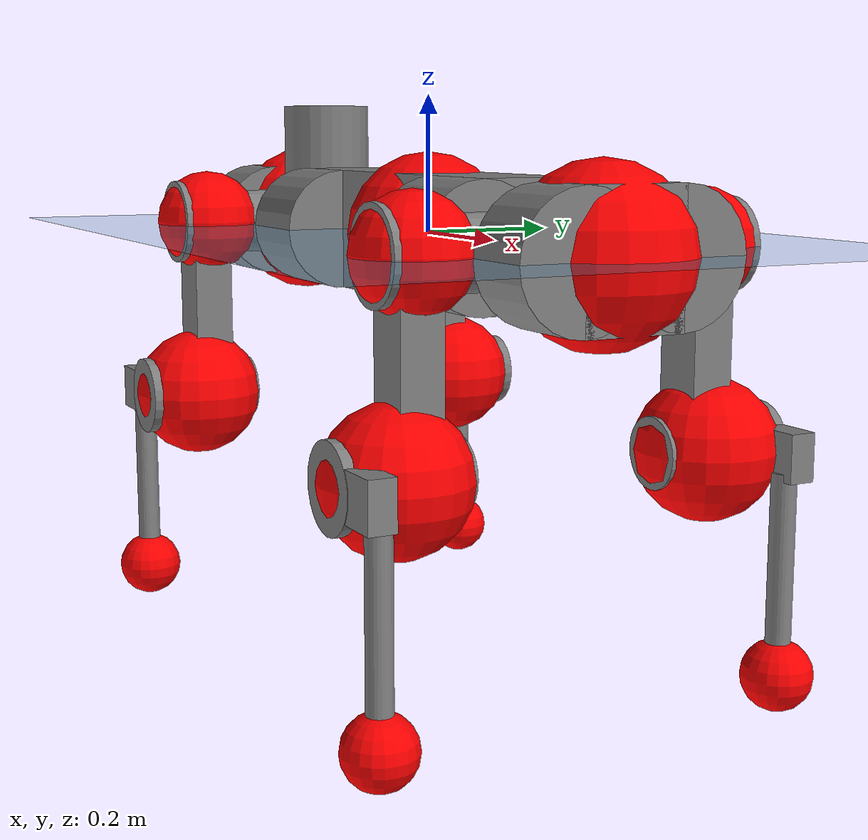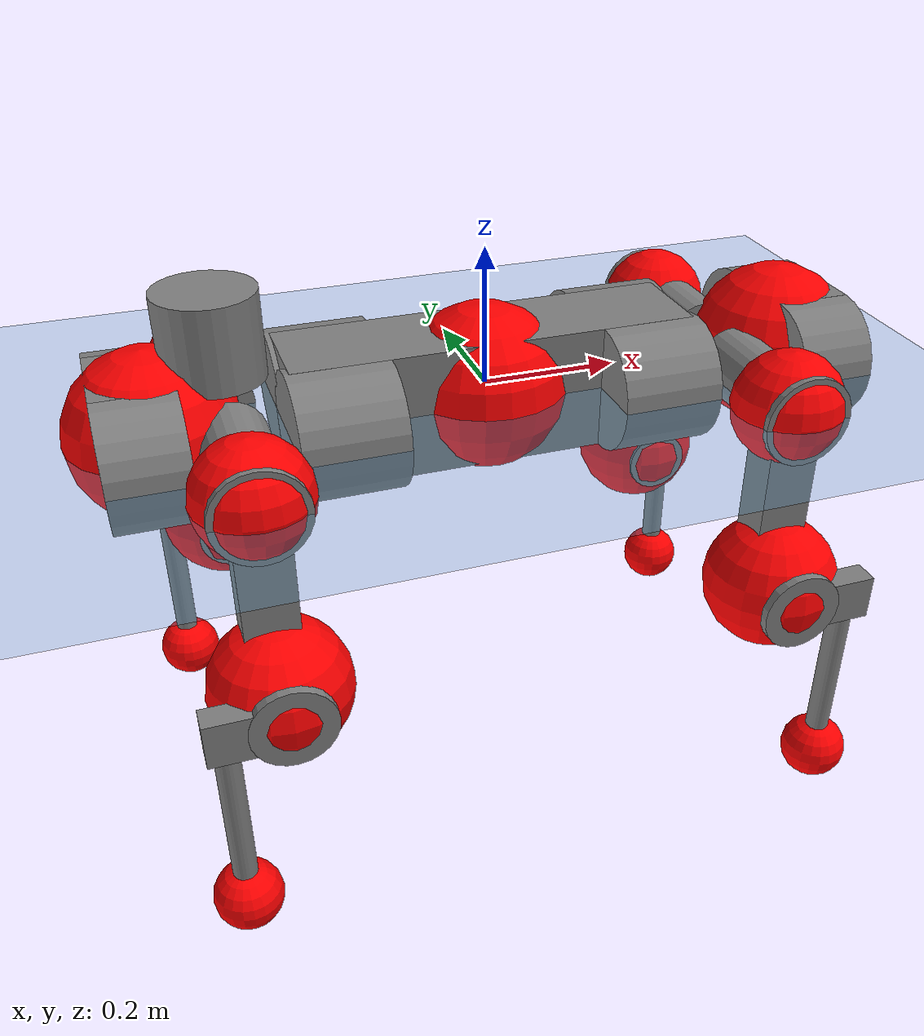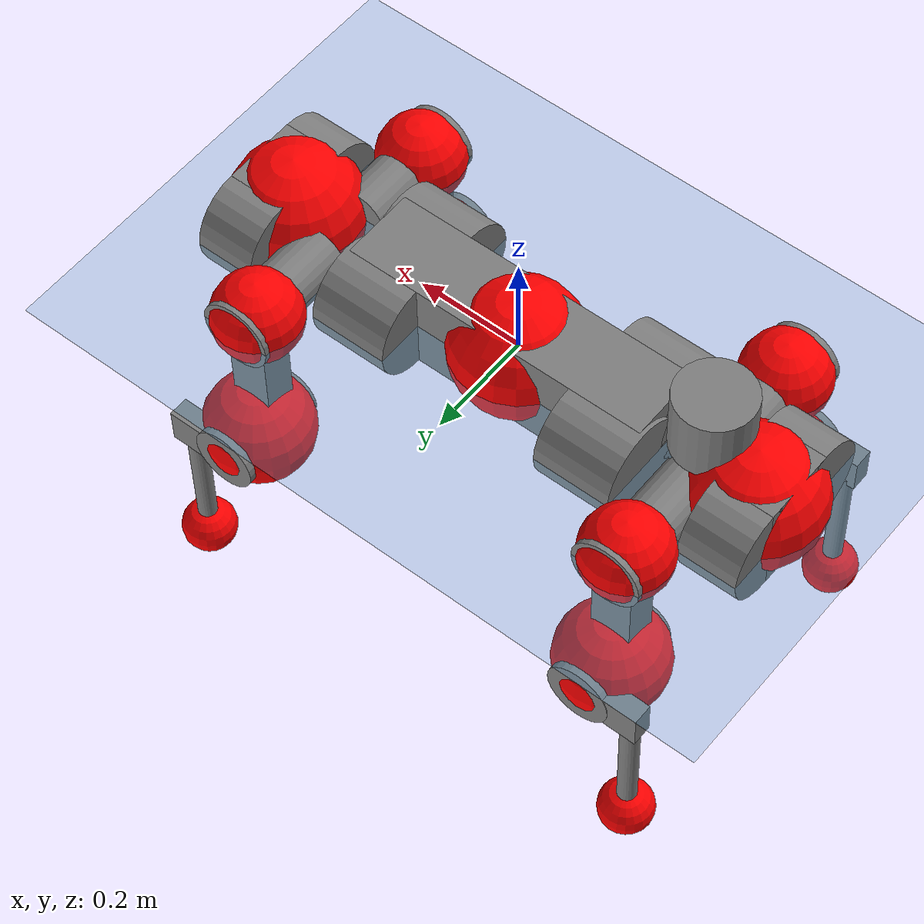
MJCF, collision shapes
<mujoco model="anymal_c">
  <compiler angle="radian" assetdir="assets" balanceinertia="true" inertiafromgeom="false"/>

  <option timestep="0.005" density="1.2" viscosity="2e-05"/>

  <size nkey="1"/>

  <visual>
    <quality shadowsize="8192"/>
    <map shadowclip="0.5"/>
  </visual>

  <default>
    <default class="/">
      <material specular="0" shininess="0.25"/>
      <geom contype="0" conaffinity="0" group="1" solref="-1000 -80"/>
      <site size="0.01 0.005 0.005" group="5"/>
      <general forcelimited="true" forcerange="-80 80" biastype="affine" gainprm="80" biasprm="0 -80 -2"/>
      <default class="anymal_c">
        <joint armature="0.01" damping="0.01" frictionloss="0.1"/>
        <default class="visual">
          <geom type="mesh" group="2"/>
          <default class="visual_zflip"/>
        </default>
        <default class="collision">
          <geom type="cylinder" group="3"/>
          <default class="foot">
            <geom size="0.03 0 0" type="sphere" condim="6" priority="1" friction="0.8 0.02 0.01" solimp="0.015 1 0.03"/>
          </default>
        </default>
      </default>
      <default class="reward_collision_sphere">
        <geom group="5" rgba="1 0 0 1"/>
      </default>
    </default>
  </default>

  <asset>
    <texture type="skybox" colorspace="auto" name="//unnamed_texture_0" builtin="gradient" rgb1="0.95 0.95 0.95" rgb2="0.95 0.95 0.95" width="100" height="600"/>
    <texture type="2d" colorspace="auto" name="texplane" builtin="checker" rgb1="0.345 0.575 0.748" rgb2="0.345 0.575 0.748" markrgb="1 1 1" width="512" height="512"/>
    <texture type="2d" colorspace="linear" name="base" file="base.png"/>
    <texture type="2d" colorspace="linear" name="top_shell" file="top_shell.png"/>
    <texture type="2d" colorspace="linear" name="bottom_shell" file="bottom_shell.png"/>
    <texture type="2d" colorspace="linear" name="remote" file="remote.png"/>
    <texture type="2d" colorspace="linear" name="hatch" file="hatch.png"/>
    <texture type="2d" colorspace="linear" name="handle" file="handle.png"/>
    <texture type="2d" colorspace="linear" name="face" file="face.png"/>
    <texture type="2d" colorspace="linear" name="battery" file="battery.png"/>
    <texture type="2d" colorspace="linear" name="lidar_cage" file="lidar_cage.png"/>
    <texture type="2d" colorspace="linear" name="depth_camera" file="depth_camera.png"/>
    <texture type="2d" colorspace="linear" name="wide_angle_camera" file="wide_angle_camera.png"/>
    <texture type="2d" colorspace="linear" name="lidar" file="lidar.png"/>
    <texture type="2d" colorspace="linear" name="drive" file="drive.png"/>
    <texture type="2d" colorspace="linear" name="hip_l" file="hip_l.png"/>
    <texture type="2d" colorspace="linear" name="shank_l" file="shank_l.png"/>
    <texture type="2d" colorspace="linear" name="foot" file="foot.png"/>
    <texture type="2d" colorspace="linear" name="thigh" file="thigh.png"/>
    <texture type="2d" colorspace="linear" name="shank_r" file="shank_r.png"/>
    <texture type="2d" colorspace="linear" name="hip_r" file="hip_r.png"/>
    <material name="MatPlane" class="/" texture="texplane" texuniform="true" texrepeat="2 2" specular="0.9" shininess="0.5"/>
    <material name="black_plastic" class="/" rgba="0.007 0.007 0.007 1"/>
    <material name="green" class="/" rgba="0.052 0.178 0.033 1"/>
    <material name="red" class="/" rgba="0.178 0.006 0.005 1"/>
    <material name="yellow" class="/" rgba="0.178 0.119 0.006 1"/>
    <material name="lwl" class="/" rgba="0.8 0.8 0.8 1"/>
    <material name="base" class="/" texture="base"/>
    <material name="top_shell" class="/" texture="top_shell"/>
    <material name="bottom_shell" class="/" texture="bottom_shell"/>
    <material name="hip_l" class="/" texture="hip_l"/>
    <material name="thigh" class="/" texture="thigh"/>
    <material name="shank_l" class="/" texture="shank_l"/>
    <material name="foot" class="/" texture="foot"/>
    <material name="hip_r" class="/" texture="hip_r"/>
    <material name="shank" class="/" texture="shank_r"/>
    <material name="hatch" class="/" texture="hatch"/>
    <material name="remote" class="/" texture="remote"/>
    <material name="handle" class="/" texture="handle"/>
    <material name="face" class="/" texture="face"/>
    <material name="depth_camera" class="/" texture="depth_camera"/>
    <material name="wide_angle_camera" class="/" texture="wide_angle_camera"/>
    <material name="battery" class="/" texture="battery"/>
    <material name="lidar_cage" class="/" texture="lidar_cage"/>
    <material name="lidar" class="/" texture="lidar"/>
    <material name="drive" class="/" texture="drive"/>
    <mesh name="base_0" class="/" file="base_0.obj"/>
    <mesh name="base_1" class="/" file="base_1.obj"/>
    <mesh name="base_2" class="/" file="base_2.obj"/>
    <mesh name="base_3" class="/" file="base_3.obj"/>
    <mesh name="base_4" class="/" file="base_4.obj"/>
    <mesh name="base_5" class="/" file="base_5.obj"/>
    <mesh name="top_shell" class="/" file="top_shell.obj"/>
    <mesh name="bottom_shell" class="/" file="bottom_shell.obj"/>
    <mesh name="remote" class="/" file="remote.obj"/>
    <mesh name="handle" class="/" file="handle.obj"/>
    <mesh name="face" class="/" file="face.obj"/>
    <mesh name="wide_angle_camera" class="/" file="wide_angle_camera.obj"/>
    <mesh name="depth_camera" class="/" file="depth_camera.obj"/>
    <mesh name="battery" class="/" file="battery.obj"/>
    <mesh name="lidar_cage" class="/" file="lidar_cage.obj"/>
    <mesh name="lidar" class="/" file="lidar.obj"/>
    <mesh name="drive" class="/" file="drive.obj"/>
    <mesh name="hip_l" class="/" file="hip_l.obj"/>
    <mesh name="thigh" class="/" file="thigh.obj"/>
    <mesh name="shank_l" class="/" file="shank_l.obj"/>
    <mesh name="foot" class="/" file="foot.obj"/>
    <mesh name="hip_r" class="/" file="hip_r.obj"/>
    <mesh name="hatch" class="/" file="hatch.obj"/>
    <mesh name="shank_r" class="/" file="shank_r.obj"/>
  </asset>

  <worldbody>
    <geom name="floor" class="/" size="100 100 0.125" type="plane" group="0" material="MatPlane"/>
    <light name="toplight_shadow" class="/" pos="0 0 5" dir="0.0990148 0.0990148 -0.990148" type="directional" ambient="0.04 0.04 0.04" diffuse="0.55 0.55 0.55" specular="0.12 0.12 0.12"/>
    <light name="toplight_fill" class="/" pos="0 0 5" dir="0.0990148 0.0990148 -0.990148" type="directional" castshadow="false" ambient="0.04 0.04 0.04" diffuse="0.3 0.3 0.3" specular="0.08 0.08 0.08"/>
    <body name="trunk" childclass="anymal_c" pos="-0.00103795 0.000202392 -0.00232591" quat="0.999999 1.36439e-05 9.3881e-05 0.0012944">
      <inertial pos="0.00221746 0.00267648 0.0461825" quat="0.495395 0.502967 0.492097 0.50936" mass="19.2217" diaginertia="0.805785 0.644098 0.196256"/>
      <joint name="//unnamed_joint_0" type="free" armature="0" damping="0" frictionloss="0"/>
      <geom name="//unnamed_geom_1" class="visual" material="green" mesh="base_0"/>
      <geom name="//unnamed_geom_2" class="visual" material="yellow" mesh="base_1"/>
      <geom name="//unnamed_geom_3" class="visual" material="red" mesh="base_2"/>
      <geom name="//unnamed_geom_4" class="visual" material="black_plastic" mesh="base_3"/>
      <geom name="//unnamed_geom_5" class="visual" material="lwl" mesh="base_4"/>
      <geom name="//unnamed_geom_6" class="visual" material="base" mesh="base_5"/>
      <geom name="trunk_1" class="collision" size="0.291258 0.0703036 0.0903904" type="box"/>
      <geom name="trunk_2" class="collision" size="0.0903904 0.0728145" pos="0.22601 0.0699407 0" quat="0.707107 0 0.707107 0"/>
      <geom name="trunk_3" class="collision" size="0.0903904 0.0728145" pos="-0.22601 0.0699407 0" quat="0.707107 0 0.707107 0"/>
      <geom name="trunk_4" class="collision" size="0.0903904 0.0728145" pos="0.22601 -0.0699407 0" quat="0.707107 0 0.707107 0"/>
      <geom name="trunk_5" class="collision" size="0.0903904 0.0728145" pos="-0.22601 -0.0699407 0" quat="0.707107 0 0.707107 0"/>
      <geom name="//unnamed_geom_12" class="visual" material="top_shell" mesh="top_shell"/>
      <geom name="//unnamed_geom_13" class="visual" material="bottom_shell" mesh="bottom_shell"/>
      <geom name="//unnamed_geom_14" class="visual" material="remote" mesh="remote"/>
      <geom name="//unnamed_geom_15" class="visual" material="handle" mesh="handle"/>
      <geom name="//unnamed_geom_16" class="visual" pos="0.430719 0 0" quat="1 0 0 0" material="face" mesh="face"/>
      <geom name="trunk_6" class="collision" size="0.0552386 0.0703036 0.0903904" pos="0.487871 0 0" type="box"/>
      <geom name="//unnamed_geom_18" class="collision" size="0.0903904 0.0552386" pos="0.487871 0.0699407 0" quat="0.707107 0 0.707107 0"/>
      <geom name="//unnamed_geom_19" class="collision" size="0.0903904 0.0552386" pos="0.487871 -0.0699407 0" quat="0.707107 0 0.707107 0"/>
      <geom name="//unnamed_geom_20" class="visual" pos="0.479711 0 -0.0279727" quat="0.965926 0 0.258819 0" material="depth_camera" mesh="depth_camera"/>
      <geom name="//unnamed_geom_21" class="visual" pos="0.533073 0 0.0145917" material="wide_angle_camera" mesh="wide_angle_camera"/>
      <geom name="//unnamed_geom_22" class="visual_zflip" pos="-0.430719 0 0" quat="0 0 0 1" material="face" mesh="face"/>
      <geom name="trunk_7" class="collision" size="0.0552386 0.0703036 0.0903904" pos="-0.487871 0 0" quat="0 0 0 1" type="box"/>
      <geom name="//unnamed_geom_24" class="collision" size="0.0903904 0.0552386" pos="-0.487871 -0.0699407 0" quat="0 -0.707107 0 0.707107"/>
      <geom name="//unnamed_geom_25" class="collision" size="0.0903904 0.0552386" pos="-0.487871 0.0699407 0" quat="0 -0.707107 0 0.707107"/>
      <geom name="//unnamed_geom_26" class="visual" pos="-0.479711 0 -0.0279727" quat="0 -0.258819 0 0.965926" material="depth_camera" mesh="depth_camera"/>
      <geom name="//unnamed_geom_27" class="visual_zflip" pos="-0.533073 0 0.0145917" quat="0 0 0 1" material="wide_angle_camera" mesh="wide_angle_camera"/>
      <geom name="//unnamed_geom_28" class="visual" material="battery" mesh="battery"/>
      <geom name="//unnamed_geom_29" class="visual" pos="0 0.075868 0.0288054" quat="0.683013 -0.183013 0.183013 0.683013" material="depth_camera" mesh="depth_camera"/>
      <geom name="//unnamed_geom_30" class="visual" pos="0 -0.075868 0.0288054" quat="0.683013 0.183013 0.183013 -0.683013" material="depth_camera" mesh="depth_camera"/>
      <geom name="//unnamed_geom_31" class="visual" pos="-0.378243 0 0.0716427" quat="1 0 0 0" material="lidar_cage" mesh="lidar_cage"/>
      <geom name="trunk_8" class="collision" size="0.0703036 0.0602603" pos="-0.378243 0 0.130127"/>
      <geom name="//unnamed_geom_33" class="visual" pos="-0.378243 -1.57053e-05 0.138607" quat="0.707107 0 0 -0.707107" material="lidar" mesh="lidar"/>
      <geom name="//unnamed_geom_34" class="visual" pos="0.311635 0.103903 4.21285e-10" quat="0.258819 0.965926 0 0" material="drive" mesh="drive"/>
      <geom name="//unnamed_geom_35" class="visual" pos="0.311635 -0.103903 -4.21285e-10" quat="0.258819 -0.965926 0 0" material="drive" mesh="drive"/>
      <geom name="//unnamed_geom_36" class="visual" pos="-0.311635 0.103903 -4.21285e-10" quat="0 0 0.965926 -0.258819" material="drive" mesh="drive"/>
      <geom name="//unnamed_geom_37" class="visual" pos="-0.311635 -0.103903 4.21285e-10" quat="0 0 -0.965926 -0.258819" material="drive" mesh="drive"/>
      <geom name="//unnamed_geom_38" class="visual" pos="0.120539 0 0.0711554" quat="1 0 0 0" material="hatch" mesh="hatch"/>
      <geom name="//unnamed_geom_39" class="reward_collision_sphere" size="0.120521"/>
      <geom name="//unnamed_geom_40" class="reward_collision_sphere" size="0.120521" pos="0.467608 0 0"/>
      <geom name="//unnamed_geom_41" class="reward_collision_sphere" size="0.120521" pos="-0.467608 0 0"/>
      <site name="imu" pos="0.253822 0.0192236 0.0311861" size="0.0100434"/>
      <camera name="track" pos="0 -1.99831 0" quat="0.707107 0.707107 0 0" mode="trackcom"/>
      <camera name="ego_camera" pos="0.467608 0 -0.0389892" quat="-0.5 -0.5 0.5 0.5"/>
      <body name="LF_HIP" pos="0.312518 0.105182 0.00246026" quat="0.258954 0.96589 7.08345e-05 0.000201202">
        <inertial pos="0.0562386 -0.014489 -0.0102327" quat="-0.119337 0.705743 -0.140963 0.68397" mass="2.74465" diaginertia="0.00714345 0.0047774 0.00282102"/>
        <joint name="LF_HAA" pos="0 0 0" axis="0.999928 -0.0114853 0.00356777" range="-0.730197 0.526704" armature="0.00997545" damping="0" frictionloss="0.109772"/>
        <geom name="//unnamed_geom_42" class="visual" pos="0 2.47823e-05 -4.07047e-06" quat="0.258819 -0.965926 0 0" material="hip_l" mesh="hip_l"/>
        <geom name="//unnamed_geom_43" class="visual" pos="0.0622438 -0.0748866 -0.0430552" quat="0.183013 -0.683013 0.683013 0.183013" material="drive" mesh="drive"/>
        <geom name="//unnamed_geom_44" class="collision" size="0.0502169 0.0703036" pos="0.0622438 -0.0119497 -0.00673052" quat="-0.353553 -0.612372 0.612372 -0.353553"/>
        <body name="LF_THIGH" pos="0.0598213 -0.0707371 -0.0384393" quat="0.183013 -0.682953 0.683083 0.18297">
          <inertial pos="0.032273 0.000687486 -0.239318" quat="0.9932 -0.00469624 -0.0807389 0.0837404" mass="2.97778" diaginertia="0.0349971 0.0287718 0.00342966"/>
          <joint name="LF_HFE" pos="0 0 0" axis="0.999997 0.00027984 0.00248058" range="-3.18692 3.14145" armature="0.00882541" damping="0.0210267" frictionloss="0.100275"/>
          <geom name="//unnamed_geom_45" class="visual" pos="0.000795356 1.25329e-06 0" quat="0.707107 0 0 -0.707107" material="thigh" mesh="thigh"/>
          <geom name="//unnamed_geom_46" class="collision" size="0.0652819 0.0401735" pos="0.0415651 0 0" quat="0.5 0.5 -0.5 -0.5"/>
          <geom name="//unnamed_geom_47" class="collision" size="0.0376627 0.0301301 0.141927" pos="0.0311739 0 -0.137743" quat="0.707107 0 0 -0.707107" type="box"/>
          <geom name="//unnamed_geom_48" class="visual" pos="0.104225 0 -0.277798" quat="1 0 0 0" material="drive" mesh="drive"/>
          <geom name="//unnamed_geom_49" class="collision" size="0.0502169 0.0703036" pos="0.0314856 0 -0.277798" quat="0.707107 0 0.707107 0"/>
          <geom name="//unnamed_geom_50" class="reward_collision_sphere" size="0.080347" pos="0.0259782 0 0"/>
          <body name="LF_SHANK" pos="0.10393 0.000435938 -0.279122" quat="1 -8.42045e-06 -1.71492e-05 -1.95508e-06">
            <inertial pos="0.00376708 -0.0636925 -0.0789666" quat="0.992911 -0.116052 -0.00116386 -0.0256676" mass="0.597953" diaginertia="0.0118783 0.00907961 0.000979196"/>
            <joint name="LF_KFE" pos="0 0 0" axis="0.999998 0.00173981 -0.000198765" range="-3.17987 3.18218" armature="0.0102499" damping="0.0129897" frictionloss="0.111444"/>
            <geom name="//unnamed_geom_51" class="visual" pos="0.000259348 0.00138286 0" quat="0.707107 0 0 -0.707107" material="shank_l" mesh="shank_l"/>
            <geom name="LF_kfe_act" class="collision" size="0.0602603 0.0200868" pos="0.0207826 0 0" quat="0.5 0.5 -0.5 -0.5"/>
            <geom name="//unnamed_geom_53" class="collision" size="0.0577484 0.0338964 0.0190824" pos="0.0207826 -0.0574503 0" quat="0.5 0.5 -0.5 -0.5" type="box"/>
            <geom name="//unnamed_geom_54" class="visual" pos="0.0135606 -0.0874299 -0.32943" quat="0.382683 0 0 -0.92388" material="foot" mesh="foot"/>
            <geom name="LF_calf" class="collision" size="0.0175759 0.141865" pos="0.0135606 -0.0878755 -0.164715" quat="0.707107 0 0 -0.707107"/>
            <geom name="LF_foot" class="foot" size="0.0296753" pos="0.0135606 -0.0878755 -0.307498" quat="0.707107 0 0 -0.707107"/>
            <geom name="//unnamed_geom_57" class="reward_collision_sphere" size="0.100434" pos="-0.0519564 0 0"/>
            <geom name="//unnamed_geom_58" class="reward_collision_sphere" size="0.0502169" pos="0.0135606 -0.0878755 -0.307498"/>
            <site name="LF_foot" class="foot" pos="0.0135606 -0.0878755 -0.307498" quat="0.707107 0 0 -0.707107" size="0.0100434"/>
          </body>
        </body>
      </body>
      <body name="RF_HIP" pos="0.310411 -0.103526 0.00214282" quat="0.258871 -0.965911 -0.000931091 -6.80359e-05">
        <inertial pos="0.0581951 0.0154765 -0.00846124" quat="0.134614 0.687037 0.129341 0.702232" mass="2.89377" diaginertia="0.00700263 0.00486502 0.00285392"/>
        <joint name="RF_HAA" pos="0 0 0" axis="0.999973 0.00736218 0.000114585" range="-0.540177 0.686913" armature="0.00984173" damping="0" frictionloss="0.112775"/>
        <geom name="//unnamed_geom_59" class="visual" pos="0 -2.47821e-05 -4.07046e-06" quat="0.258819 0.965926 0 0" material="hip_r" mesh="hip_r"/>
        <geom name="//unnamed_geom_60" class="visual" pos="0.0622438 0.0748866 -0.0430552" quat="0.183013 0.683013 0.683013 -0.183013" material="drive" mesh="drive"/>
        <geom name="//unnamed_geom_61" class="collision" size="0.0502169 0.0703036" pos="0.0622438 0.0119497 -0.00673052" quat="-0.353553 0.612372 0.612372 0.353553"/>
        <body name="RF_THIGH" pos="0.0630161 0.0700769 -0.041456" quat="0.182949 0.683375 0.682666 -0.183018">
          <inertial pos="0.0306386 0.000438796 -0.239126" quat="0.992682 -0.00444008 -0.0812842 0.0891945" mass="3.22453" diaginertia="0.0367801 0.028777 0.00374553"/>
          <joint name="RF_HFE" pos="0 0 0" axis="1 -0.000329322 0.00080405" stiffness="0.0153303" range="-3.14289 3.09583" armature="0.00938113" damping="0.00279536" frictionloss="0.0864099"/>
          <geom name="//unnamed_geom_62" class="visual" pos="0.000795356 1.25329e-06 0" quat="0.707107 0 0 -0.707107" material="thigh" mesh="thigh"/>
          <geom name="//unnamed_geom_63" class="collision" size="0.0652819 0.0401735" pos="0.0415651 0 0" quat="0.5 0.5 0.5 0.5"/>
          <geom name="//unnamed_geom_64" class="collision" size="0.0376627 0.0301301 0.141927" pos="0.0311739 0 -0.137743" quat="0.707107 0 0 0.707107" type="box"/>
          <geom name="//unnamed_geom_65" class="visual" pos="0.104225 0 -0.277798" quat="1 0 0 0" material="drive" mesh="drive"/>
          <geom name="//unnamed_geom_66" class="collision" size="0.0502169 0.0703036" pos="0.0314856 0 -0.277798" quat="0.707107 0 0.707107 0"/>
          <geom name="//unnamed_geom_67" class="reward_collision_sphere" size="0.080347" pos="0.0259782 0 0"/>
          <body name="RF_SHANK" pos="0.10143 -0.000319969 -0.278423" quat="1 0.000453562 -5.2153e-05 4.71888e-05">
            <inertial pos="0.00646035 0.0585691 -0.0755675" quat="0.99246 0.117281 -0.0035274 0.0354354" mass="0.58409" diaginertia="0.0119596 0.00920207 0.000923677"/>
            <joint name="RF_KFE" pos="0 0 0" axis="0.999996 0.00240367 -0.00120266" range="-3.13592 3.1578" armature="0.00978487" damping="0" frictionloss="0.0922604"/>
            <geom name="//unnamed_geom_68" class="visual" pos="0.000259347 -0.00138285 0" quat="0.707107 0 0 0.707107" material="shank" mesh="shank_r"/>
            <geom name="RF_kfe_act" class="collision" size="0.0602603 0.0200868" pos="0.0207826 0 0" quat="0.5 0.5 0.5 0.5"/>
            <geom name="//unnamed_geom_70" class="collision" size="0.0577484 0.0338964 0.0190824" pos="0.0207826 0.0574503 0" quat="0.5 0.5 0.5 0.5" type="box"/>
            <geom name="//unnamed_geom_71" class="visual" pos="0.0135607 0.0874299 -0.32943" quat="0.382683 0 0 0.92388" material="foot" mesh="foot"/>
            <geom name="RF_calf" class="collision" size="0.0175759 0.141865" pos="0.0135606 0.0878755 -0.164715" quat="0.707107 0 0 0.707107"/>
            <geom name="RF_foot" class="foot" size="0.0275939" pos="0.0135606 0.0878755 -0.307498" quat="0.707107 0 0 0.707107"/>
            <geom name="//unnamed_geom_74" class="reward_collision_sphere" size="0.100434" pos="-0.0519564 0 0"/>
            <geom name="//unnamed_geom_75" class="reward_collision_sphere" size="0.0502169" pos="0.0135606 0.0878755 -0.307498"/>
            <site name="RF_foot" class="foot" pos="0.0135606 0.0878755 -0.307498" quat="0.707107 0 0 0.707107" size="0.0100434"/>
          </body>
        </body>
      </body>
      <body name="LH_HIP" pos="-0.311278 0.101984 0.00321892" quat="1.94142e-05 0.000130558 0.965918 -0.258849">
        <inertial pos="0.0590461 0.0124121 -0.0104408" quat="0.135918 0.675967 0.128589 0.712783" mass="2.77326" diaginertia="0.00677085 0.00482187 0.00271943"/>
        <joint name="LH_HAA" pos="0 0 0" axis="0.99989 0.00714431 -0.0130038" range="-0.548776 0.774594" armature="0.0114093" damping="0.00792618" frictionloss="0.101825"/>
        <geom name="//unnamed_geom_76" class="visual" pos="0 -2.47821e-05 -4.07046e-06" quat="-0.258819 -0.965926 0 0" material="hip_r" mesh="hip_r"/>
        <geom name="//unnamed_geom_77" class="visual" pos="0.0622438 0.0748866 -0.0430552" quat="0.183013 0.683013 0.683013 -0.183013" material="drive" mesh="drive"/>
        <geom name="//unnamed_geom_78" class="collision" size="0.0502169 0.0703036" pos="0.0622438 0.0119497 -0.00673052" quat="-0.353553 0.612372 0.612372 0.353553"/>
        <body name="LH_THIGH" pos="0.0616796 0.0700168 -0.0401984" quat="0.182363 0.682317 0.683606 -0.184038">
          <inertial pos="0.034134 -0.00286538 -0.241406" quat="0.992792 -0.00509689 -0.0807715 0.0883917" mass="3.18707" diaginertia="0.0387174 0.0300514 0.00389005"/>
          <joint name="LH_HFE" pos="0 0 0" axis="0.999925 0.00379972 -0.0116193" stiffness="0.0046236" range="-3.19231 3.13939" armature="0.0102439" damping="0" frictionloss="0.107231"/>
          <geom name="//unnamed_geom_79" class="visual" pos="0.000795356 1.25329e-06 0" quat="0.707107 0 0 -0.707107" material="thigh" mesh="thigh"/>
          <geom name="//unnamed_geom_80" class="collision" size="0.0652819 0.0401735" pos="0.0415651 0 0" quat="0.5 0.5 -0.5 -0.5"/>
          <geom name="//unnamed_geom_81" class="collision" size="0.0376627 0.0301301 0.141927" pos="0.0311739 0 -0.137743" quat="0.707107 0 0 -0.707107" type="box"/>
          <geom name="//unnamed_geom_82" class="visual" pos="0.104225 0 -0.277798" quat="1 0 0 0" material="drive" mesh="drive"/>
          <geom name="//unnamed_geom_83" class="collision" size="0.0502169 0.0703036" pos="0.0314856 0 -0.277798" quat="0.707107 0 0.707107 0"/>
          <geom name="//unnamed_geom_84" class="reward_collision_sphere" size="0.080347" pos="0.0259782 0 0"/>
          <body name="LH_SHANK" pos="0.102337 -0.00057083 -0.279708" quat="0.999999 0.000140832 0.0014947 -0.00010753">
            <inertial pos="0.0032861 0.0635652 -0.0807273" quat="0.994125 0.105738 0.00692318 0.0220485" mass="0.575308" diaginertia="0.0118553 0.00869435 0.000965569"/>
            <joint name="LH_KFE" pos="0 0 0" axis="0.999982 0.00587587 -0.00110242" range="-3.1638 3.10179" armature="0.0114249" damping="0" frictionloss="0.101593"/>
            <geom name="//unnamed_geom_85" class="visual" pos="0.000259347 -0.00138285 0" quat="-0.707107 0 0 -0.707107" material="shank" mesh="shank_r"/>
            <geom name="LH_kfe_act" class="collision" size="0.0602603 0.0200868" pos="0.0207826 0 0" quat="0.5 0.5 -0.5 -0.5"/>
            <geom name="//unnamed_geom_87" class="collision" size="0.0577484 0.0338964 0.0190824" pos="0.0207826 0.0574503 0" quat="0.5 0.5 -0.5 -0.5" type="box"/>
            <geom name="//unnamed_geom_88" class="visual" pos="0.0135607 0.0874299 -0.32943" quat="-0.382683 0 0 -0.92388" material="foot" mesh="foot"/>
            <geom name="LH_calf" class="collision" size="0.0175759 0.141865" pos="0.0135606 0.0878755 -0.164715" quat="0.707107 0 0 -0.707107"/>
            <geom name="LH_foot" class="foot" size="0.0321726" pos="0.0135606 0.0878755 -0.307498" quat="0.707107 0 0 -0.707107"/>
            <geom name="//unnamed_geom_91" class="reward_collision_sphere" size="0.100434" pos="-0.0519564 0 0"/>
            <geom name="//unnamed_geom_92" class="reward_collision_sphere" size="0.0502169" pos="0.0135606 0.0878755 -0.307498"/>
            <site name="LH_foot" class="foot" pos="0.0135606 0.0878755 -0.307498" quat="0.707107 0 0 -0.707107" size="0.0100434"/>
          </body>
        </body>
      </body>
      <body name="RH_HIP" pos="-0.309535 -0.104604 0.00331619" quat="0.000330782 -0.00010151 -0.965925 -0.258822">
        <inertial pos="0.0560755 -0.0176244 -0.00821272" quat="-0.13479 0.71684 -0.135789 0.670473" mass="2.83104" diaginertia="0.00753276 0.0050695 0.00304963"/>
        <joint name="RH_HAA" pos="0 0 0" axis="0.99995 0.00842874 0.00535506" range="-0.755418 0.491116" armature="0.00996014" damping="0.0100388" frictionloss="0.110607"/>
        <geom name="//unnamed_geom_93" class="visual" pos="0 2.47823e-05 -4.07047e-06" quat="-0.258819 0.965926 0 0" material="hip_l" mesh="hip_l"/>
        <geom name="//unnamed_geom_94" class="visual" pos="0.0622438 -0.0748866 -0.0430552" quat="-0.183013 0.683013 -0.683013 -0.183013" material="drive" mesh="drive"/>
        <geom name="//unnamed_geom_95" class="collision" size="0.0502169 0.0703036" pos="0.0622438 -0.0119497 -0.00673052" quat="0.353553 0.612372 -0.612372 0.353553"/>
        <body name="RH_THIGH" pos="0.0629207 -0.0717774 -0.0431365" quat="-0.182555 0.682881 -0.68325 -0.183075">
          <inertial pos="0.0334622 -0.00197545 -0.242081" quat="0.992846 0.00512723 -0.0872734 0.0813311" mass="3.0255" diaginertia="0.0378897 0.0295558 0.00364922"/>
          <joint name="RH_HFE" pos="0 0 0" axis="0.999977 -0.00273252 0.00617434" range="-3.12885 3.08909" armature="0.0100469" damping="0.00120578" frictionloss="0.102339"/>
          <geom name="//unnamed_geom_96" class="visual" pos="0.000795356 1.25329e-06 0" quat="0.707107 0 0 -0.707107" material="thigh" mesh="thigh"/>
          <geom name="//unnamed_geom_97" class="collision" size="0.0652819 0.0401735" pos="0.0415651 0 0" quat="0.5 0.5 0.5 0.5"/>
          <geom name="//unnamed_geom_98" class="collision" size="0.0376627 0.0301301 0.141927" pos="0.0311739 0 -0.137743" quat="0.707107 0 0 0.707107" type="box"/>
          <geom name="//unnamed_geom_99" class="visual" pos="0.104225 0 -0.277798" quat="1 0 0 0" material="drive" mesh="drive"/>
          <geom name="//unnamed_geom_100" class="collision" size="0.0502169 0.0703036" pos="0.0314856 0 -0.277798" quat="0.707107 0 0.707107 0"/>
          <geom name="//unnamed_geom_101" class="reward_collision_sphere" size="0.080347" pos="0.0259782 0 0"/>
          <body name="RH_SHANK" pos="0.101911 0.00325622 -0.28004" quat="1 0.000545679 0.000778182 0.000130798">
            <inertial pos="0.00607591 -0.0613414 -0.079009" quat="0.994345 -0.104525 -0.000933157 -0.0187705" mass="0.620205" diaginertia="0.0128331 0.00968292 0.000980285"/>
            <joint name="RH_KFE" pos="0 0 0" axis="0.999937 0.00484819 0.0101501" range="-3.07282 3.14572" armature="0.0102314" damping="0" frictionloss="0.101804"/>
            <geom name="//unnamed_geom_102" class="visual" pos="0.000259348 0.00138286 0" quat="0.707107 0 0 -0.707107" material="shank_l" mesh="shank_l"/>
            <geom name="RH_kfe_act" class="collision" size="0.0602603 0.0200868" pos="0.0207826 0 0" quat="0.5 0.5 0.5 0.5"/>
            <geom name="//unnamed_geom_104" class="collision" size="0.0577484 0.0338964 0.0190824" pos="0.0207826 -0.0574503 0" quat="0.5 0.5 0.5 0.5" type="box"/>
            <geom name="//unnamed_geom_105" class="visual" pos="0.0135606 -0.0874299 -0.32943" quat="0.382683 0 0 -0.92388" material="foot" mesh="foot"/>
            <geom name="RH_calf" class="collision" size="0.0175759 0.141865" pos="0.0135606 -0.0878755 -0.164715" quat="0.707107 0 0 0.707107"/>
            <geom name="RH_foot" class="foot" size="0.0272726" pos="0.0135606 -0.0878755 -0.307498" quat="0.707107 0 0 0.707107"/>
            <geom name="//unnamed_geom_108" class="reward_collision_sphere" size="0.100434" pos="-0.0519564 0 0"/>
            <geom name="//unnamed_geom_109" class="reward_collision_sphere" size="0.0502169" pos="0.0135606 -0.0878755 -0.307498"/>
            <site name="RH_foot" class="foot" pos="0.0135606 -0.0878755 -0.307498" quat="0.707107 0 0 0.707107" size="0.0100434"/>
          </body>
        </body>
      </body>
    </body>
  </worldbody>

  <contact>
    <pair class="/" geom1="floor" geom2="LF_foot" name="//unnamed_contact_0"/>
    <pair class="/" geom1="floor" geom2="RF_foot" name="//unnamed_contact_1"/>
    <pair class="/" geom1="floor" geom2="LH_foot" name="//unnamed_contact_2"/>
    <pair class="/" geom1="floor" geom2="RH_foot" name="//unnamed_contact_3"/>
  </contact>

  <actuator>
    <general name="LF_HAA" class="/" joint="LF_HAA" forcerange="-79.6469 79.6469" gainprm="80.3384" biasprm="0 -80.3384 -1.82082"/>
    <general name="LF_HFE" class="/" joint="LF_HFE" forcerange="-77.6241 77.6241" gainprm="80.3384" biasprm="0 -80.3384 -1.82082"/>
    <general name="LF_KFE" class="/" joint="LF_KFE" forcerange="-87.184 87.184" gainprm="80.3384" biasprm="0 -80.3384 -1.82082"/>
    <general name="RF_HAA" class="/" joint="RF_HAA" forcerange="-84.2694 84.2694" gainprm="80.3384" biasprm="0 -80.3384 -1.82082"/>
    <general name="RF_HFE" class="/" joint="RF_HFE" forcerange="-88.7586 88.7586" gainprm="80.3384" biasprm="0 -80.3384 -1.82082"/>
    <general name="RF_KFE" class="/" joint="RF_KFE" forcerange="-78.7368 78.7368" gainprm="80.3384" biasprm="0 -80.3384 -1.82082"/>
    <general name="LH_HAA" class="/" joint="LH_HAA" forcerange="-79.1917 79.1917" gainprm="80.3384" biasprm="0 -80.3384 -1.82082"/>
    <general name="LH_HFE" class="/" joint="LH_HFE" forcerange="-73.4221 73.4221" gainprm="80.3384" biasprm="0 -80.3384 -1.82082"/>
    <general name="LH_KFE" class="/" joint="LH_KFE" forcerange="-88.9577 88.9577" gainprm="80.3384" biasprm="0 -80.3384 -1.82082"/>
    <general name="RH_HAA" class="/" joint="RH_HAA" forcerange="-80.5543 80.5543" gainprm="80.3384" biasprm="0 -80.3384 -1.82082"/>
    <general name="RH_HFE" class="/" joint="RH_HFE" forcerange="-79.4699 79.4699" gainprm="80.3384" biasprm="0 -80.3384 -1.82082"/>
    <general name="RH_KFE" class="/" joint="RH_KFE" forcerange="-87.437 87.437" gainprm="80.3384" biasprm="0 -80.3384 -1.82082"/>
  </actuator>

  <sensor>
    <gyro site="imu" name="imu_angular_velocity"/>
    <velocimeter site="imu" name="imu_linear_velocity"/>
    <framelinvel objtype="site" objname="LF_foot" name="LF_foot_global_linear_velocity"/>
    <framelinvel objtype="site" objname="RF_foot" name="RF_foot_global_linear_velocity"/>
    <framelinvel objtype="site" objname="LH_foot" name="LH_foot_global_linear_velocity"/>
    <framelinvel objtype="site" objname="RH_foot" name="RH_foot_global_linear_velocity"/>
  </sensor>

  <keyframe>
    <key name="home" qpos="0 0 0.55 1 0 0 0 0 0.4 -0.8 0 -0.4 0.8 0 -0.4 0.8 0 0.4 -0.8"/>
  </keyframe>
</mujoco>
